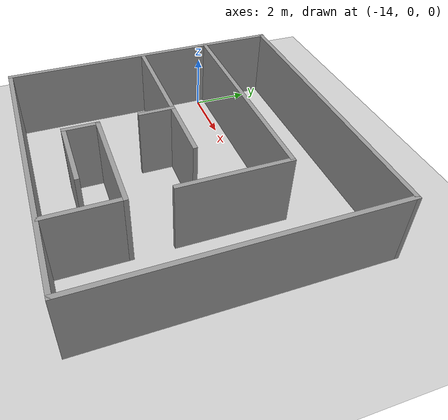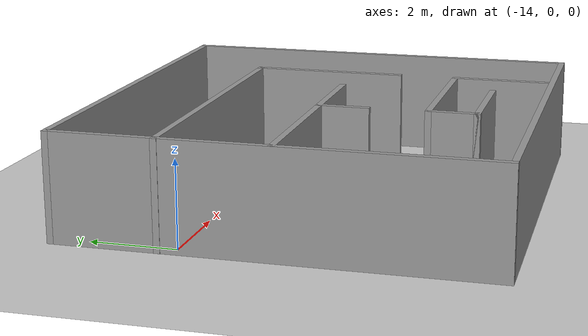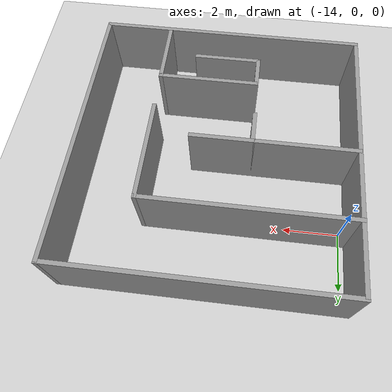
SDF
<sdf version="1.7">
 <world name="default">
  <light name="sun" type="directional">
   <pose>0 0 10 0 -0 0</pose>
   <diffuse>0.8 0.8 0.8 1</diffuse>
   <specular>0.2 0.2 0.2 1</specular>
   <attenuation>
    <range>1000</range>
    <constant>0.9</constant>
    <linear>0.01</linear>
    <quadratic>0.001</quadratic>
   </attenuation>
   <direction>-0.5 0.1 -0.9</direction>
   <spot><inner_angle>0</inner_angle><outer_angle>0</outer_angle><falloff>0</falloff></spot>
  </light>
  <model name="ground_plane">
   <static>1</static>
   <link name="link">
    <collision name="collision">
     <geometry><plane><normal>0 0 1</normal><size>100 100</size></plane></geometry>
     <surface><friction><ode><mu>100</mu><mu2>50</mu2></ode></friction></surface>
    </collision>
    <visual name="visual">
     <cast_shadows>0</cast_shadows>
     <geometry><plane><normal>0 0 1</normal><size>100 100</size></plane></geometry>
     <material>
      <script><uri>file://media/materials/scripts/gazebo.material</uri><name>Gazebo/Grey</name></script>
     </material>
    </visual>
   </link>
  </model>
  <gravity>0 0 -9.8</gravity>
  <magnetic_field>6e-06 2.3e-05 -4.2e-05</magnetic_field>
  <atmosphere type="adiabatic"/>
  <physics type="ode">
   <max_step_size>0.001</max_step_size>
   <real_time_factor>1</real_time_factor>
   <real_time_update_rate>1000</real_time_update_rate>
  </physics>
  <scene><ambient>0.4 0.4 0.4 1</ambient><background>0.7 0.7 0.7 1</background><shadows>1</shadows></scene>
  <spherical_coordinates>
   <surface_model>EARTH_WGS84</surface_model>
   <latitude_deg>0</latitude_deg>
   <longitude_deg>0</longitude_deg>
   <elevation>0</elevation>
   <heading_deg>0</heading_deg>
  </spherical_coordinates>
  <model name="test_scene">
   <pose>-7.17267 -2.14461 0 0 -0 0</pose>
   <link name="Wall_0">
    <collision name="Wall_0_Collision">
     <geometry><box><size>10 0.15 2.5</size></box></geometry>
     <pose>0 0 1.25 0 -0 0</pose>
    </collision>
    <visual name="Wall_0_Visual">
     <pose>0 0 1.25 0 -0 0</pose>
     <geometry><box><size>10 0.15 2.5</size></box></geometry>
     <material>
      <script><uri>file://media/materials/scripts/gazebo.material</uri><name>Gazebo/Grey</name></script>
      <ambient>1 1 1 1</ambient>
     </material>
     <meta><layer>0</layer></meta>
    </visual>
    <pose>-7.09149 0 0 0 -0 -1.5708</pose>
   </link>
   <link name="Wall_10">
    <collision name="Wall_10_Collision">
     <geometry><box><size>1.25 0.15 2.5</size></box></geometry>
     <pose>0 0 1.25 0 -0 0</pose>
    </collision>
    <visual name="Wall_10_Visual">
     <pose>0 0 1.25 0 -0 0</pose>
     <geometry><box><size>1.25 0.15 2.5</size></box></geometry>
     <material>
      <script><uri>file://media/materials/scripts/gazebo.material</uri><name>Gazebo/Grey</name></script>
      <ambient>1 1 1 1</ambient>
     </material>
     <meta><layer>0</layer></meta>
    </visual>
    <pose>-3.34478 -3.08812 0 0 -0 -1.5708</pose>
   </link>
   <link name="Wall_11">
    <collision name="Wall_11_Collision">
     <geometry><box><size>2.5 0.15 2.5</size></box></geometry>
     <pose>0 0 1.25 0 -0 0</pose>
    </collision>
    <visual name="Wall_11_Visual">
     <pose>0 0 1.25 0 -0 0</pose>
     <geometry><box><size>2.5 0.15 2.5</size></box></geometry>
     <material>
      <script><uri>file://media/materials/scripts/gazebo.material</uri><name>Gazebo/Grey</name></script>
      <ambient>1 1 1 1</ambient>
     </material>
     <meta><layer>0</layer></meta>
    </visual>
    <pose>-2.16978 -3.63812 0 0 -0 0</pose>
   </link>
   <link name="Wall_15">
    <collision name="Wall_15_Collision">
     <geometry><box><size>6 0.15 2.5</size></box></geometry>
     <pose>0 0 1.25 0 -0 0</pose>
    </collision>
    <visual name="Wall_15_Visual">
     <pose>0 0 1.25 0 -0 0</pose>
     <geometry><box><size>6 0.15 2.5</size></box></geometry>
     <material>
      <script><uri>file://media/materials/scripts/gazebo.material</uri><name>Gazebo/Grey</name></script>
      <ambient>1 1 1 1</ambient>
     </material>
     <meta><layer>0</layer></meta>
    </visual>
    <pose>-4.14954 -0.032462 0 0 -0 0</pose>
   </link>
   <link name="Wall_17">
    <collision name="Wall_17_Collision">
     <geometry><box><size>1.25 0.15 2.5</size></box></geometry>
     <pose>0 0 1.25 0 -0 0</pose>
    </collision>
    <visual name="Wall_17_Visual">
     <pose>0 0 1.25 0 -0 0</pose>
     <geometry><box><size>1.25 0.15 2.5</size></box></geometry>
     <material>
      <script><uri>file://media/materials/scripts/gazebo.material</uri><name>Gazebo/Grey</name></script>
      <ambient>1 1 1 1</ambient>
     </material>
     <meta><layer>0</layer></meta>
    </visual>
    <pose>-3.39678 -0.582462 0 0 -0 -1.5708</pose>
   </link>
   <link name="Wall_19">
    <collision name="Wall_19_Collision">
     <geometry><box><size>7.5 0.15 2.5</size></box></geometry>
     <pose>0 0 1.25 0 -0 0</pose>
    </collision>
    <visual name="Wall_19_Visual">
     <pose>0 0 1.25 0 -0 0</pose>
     <geometry><box><size>7.5 0.15 2.5</size></box></geometry>
     <material>
      <script><uri>file://media/materials/scripts/gazebo.material</uri><name>Gazebo/Grey</name></script>
      <ambient>1 1 1 1</ambient>
     </material>
     <meta><layer>0</layer></meta>
    </visual>
    <pose>-3.42267 2.48877 0 0 -0 0</pose>
   </link>
   <link name="Wall_2">
    <collision name="Wall_2_Collision">
     <geometry><box><size>10 0.15 2.5</size></box></geometry>
     <pose>0 0 1.25 0 -0 0</pose>
    </collision>
    <visual name="Wall_2_Visual">
     <pose>0 0 1.25 0 -0 0</pose>
     <geometry><box><size>10 0.15 2.5</size></box></geometry>
     <material>
      <script><uri>file://media/materials/scripts/gazebo.material</uri><name>Gazebo/Grey</name></script>
      <ambient>1 1 1 1</ambient>
     </material>
     <meta><layer>0</layer></meta>
    </visual>
    <pose>-2.16649 -4.925 0 0 -0 0</pose>
   </link>
   <link name="Wall_20">
    <collision name="Wall_20_Collision">
     <geometry><box><size>3.75 0.15 2.5</size></box></geometry>
     <pose>0 0 1.25 0 -0 0</pose>
    </collision>
    <visual name="Wall_20_Visual">
     <pose>0 0 1.25 0 -0 0</pose>
     <geometry><box><size>3.75 0.15 2.5</size></box></geometry>
     <material>
      <script><uri>file://media/materials/scripts/gazebo.material</uri><name>Gazebo/Grey</name></script>
      <ambient>1 1 1 1</ambient>
     </material>
     <meta><layer>0</layer></meta>
    </visual>
    <pose>0.252326 0.688774 0 0 -0 -1.5708</pose>
   </link>
   <link name="Wall_3">
    <collision name="Wall_3_Collision">
     <geometry><box><size>10 0.15 2.5</size></box></geometry>
     <pose>0 0 1.25 0 -0 0</pose>
    </collision>
    <visual name="Wall_3_Visual">
     <pose>0 0 1.25 0 -0 0</pose>
     <geometry><box><size>10 0.15 2.5</size></box></geometry>
     <material>
      <script><uri>file://media/materials/scripts/gazebo.material</uri><name>Gazebo/Grey</name></script>
      <ambient>1 1 1 1</ambient>
     </material>
     <meta><layer>0</layer></meta>
    </visual>
    <pose>2.75851 0 0 0 -0 1.5708</pose>
   </link>
   <link name="Wall_4">
    <collision name="Wall_4_Collision">
     <geometry><box><size>10 0.15 2.5</size></box></geometry>
     <pose>0 0 1.25 0 -0 0</pose>
    </collision>
    <visual name="Wall_4_Visual">
     <pose>0 0 1.25 0 -0 0</pose>
     <geometry><box><size>10 0.15 2.5</size></box></geometry>
     <material>
      <script><uri>file://media/materials/scripts/gazebo.material</uri><name>Gazebo/Grey</name></script>
      <ambient>1 1 1 1</ambient>
     </material>
     <meta><layer>0</layer></meta>
    </visual>
    <pose>-2.16649 4.925 0 0 -0 3.14159</pose>
   </link>
   <link name="Wall_8">
    <collision name="Wall_8_Collision">
     <geometry><box><size>2.5 0.15 2.5</size></box></geometry>
     <pose>0 0 1.25 0 -0 0</pose>
    </collision>
    <visual name="Wall_8_Visual">
     <pose>0 0 1.25 0 -0 0</pose>
     <geometry><box><size>2.5 0.15 2.5</size></box></geometry>
     <material>
      <script><uri>file://media/materials/scripts/gazebo.material</uri><name>Gazebo/Grey</name></script>
      <ambient>1 1 1 1</ambient>
     </material>
     <meta><layer>0</layer></meta>
    </visual>
    <pose>0.255221 -3.71312 0 0 -0 1.5708</pose>
   </link>
   <link name="Wall_9">
    <collision name="Wall_9_Collision">
     <geometry><box><size>3.75 0.15 2.5</size></box></geometry>
     <pose>0 0 1.25 0 -0 0</pose>
    </collision>
    <visual name="Wall_9_Visual">
     <pose>0 0 1.25 0 -0 0</pose>
     <geometry><box><size>3.75 0.15 2.5</size></box></geometry>
     <material>
      <script><uri>file://media/materials/scripts/gazebo.material</uri><name>Gazebo/Grey</name></script>
      <ambient>1 1 1 1</ambient>
     </material>
     <meta><layer>0</layer></meta>
    </visual>
    <pose>-1.54478 -2.53812 0 0 -0 3.14159</pose>
   </link>
   <static>1</static>
  </model>
 </world>
</sdf>
